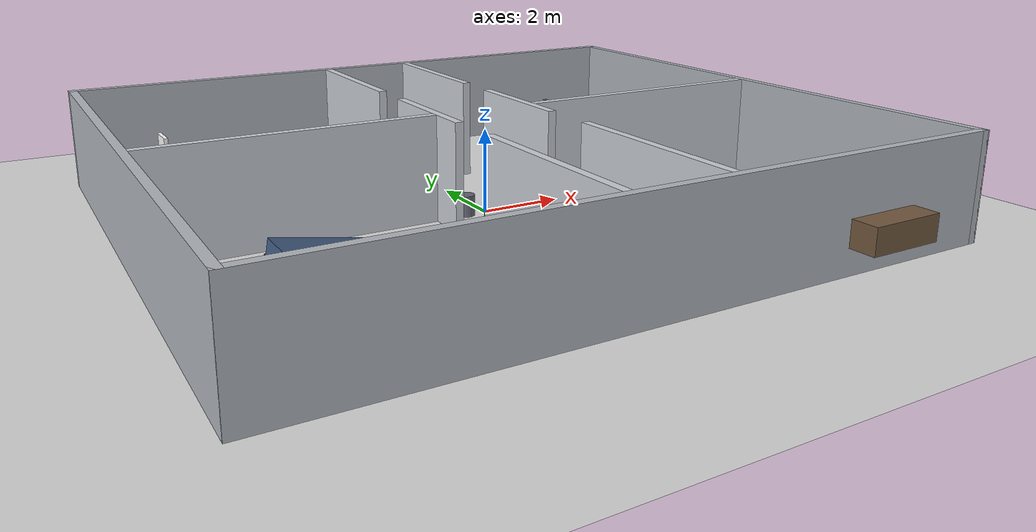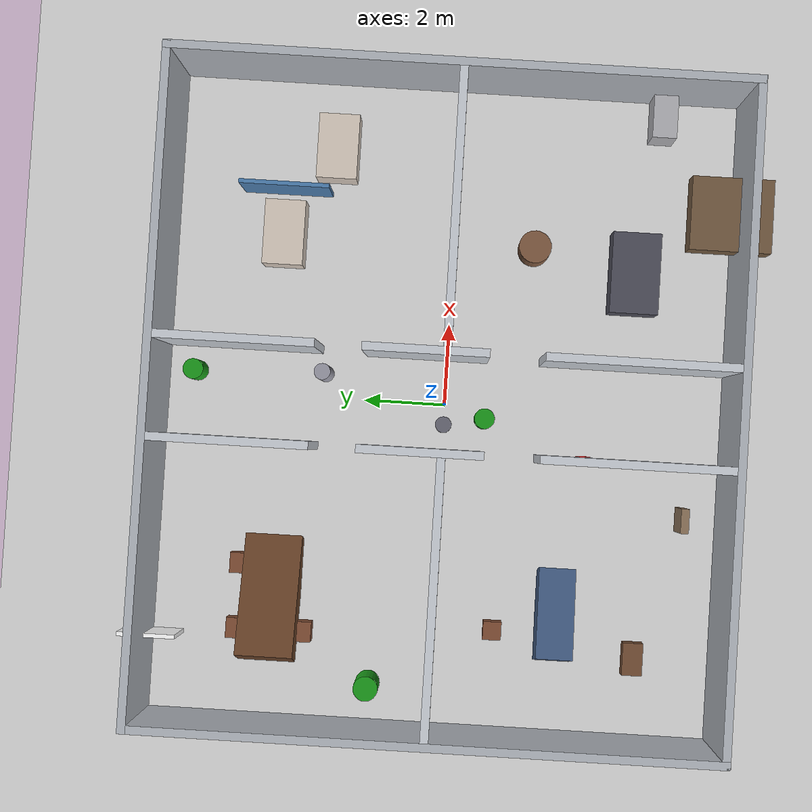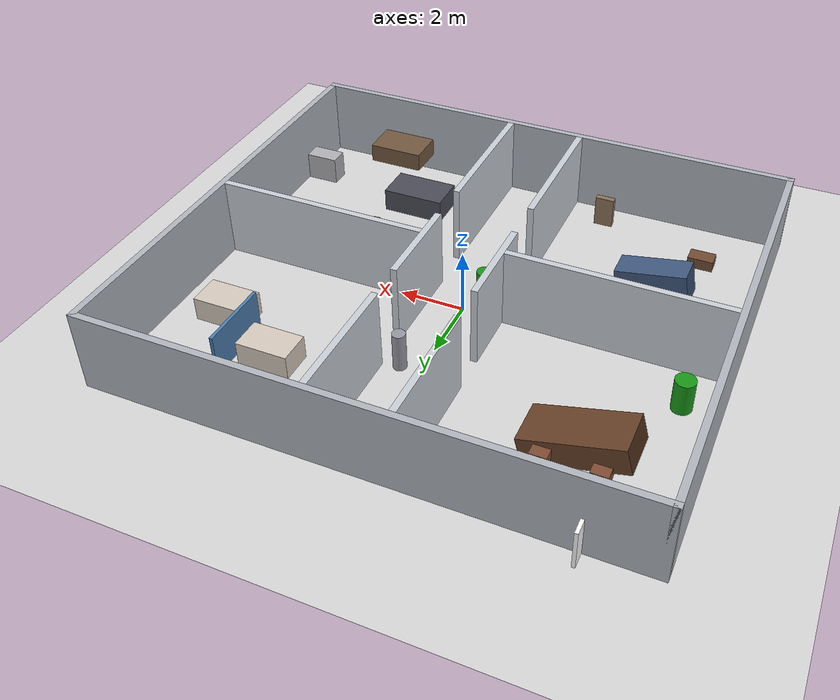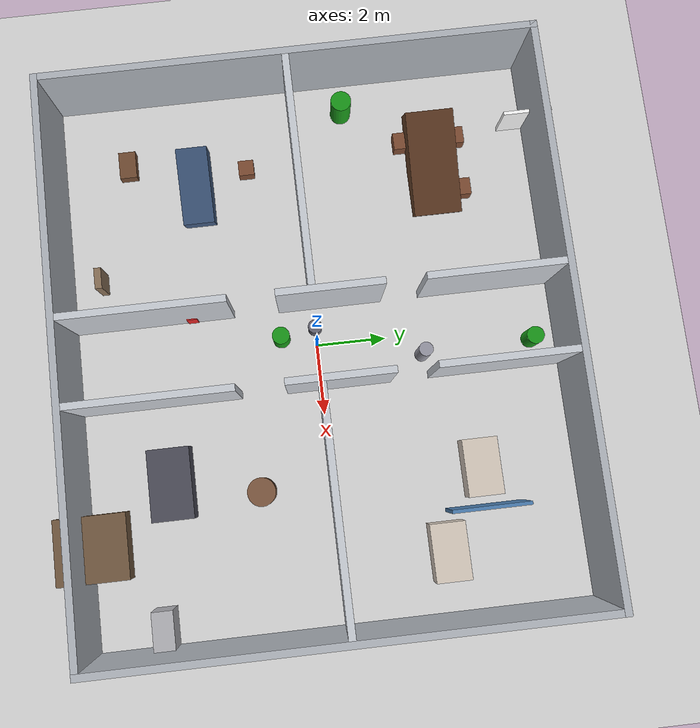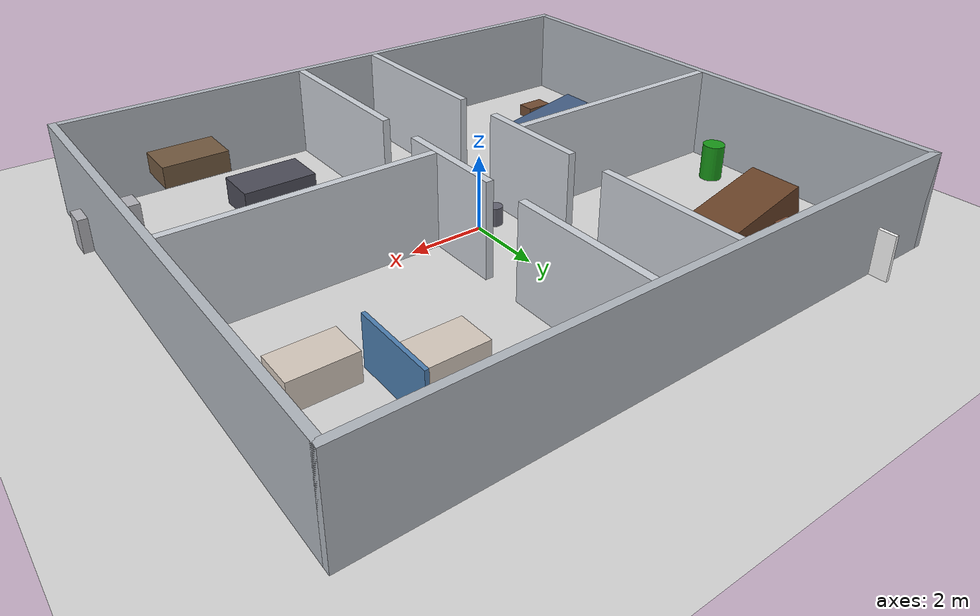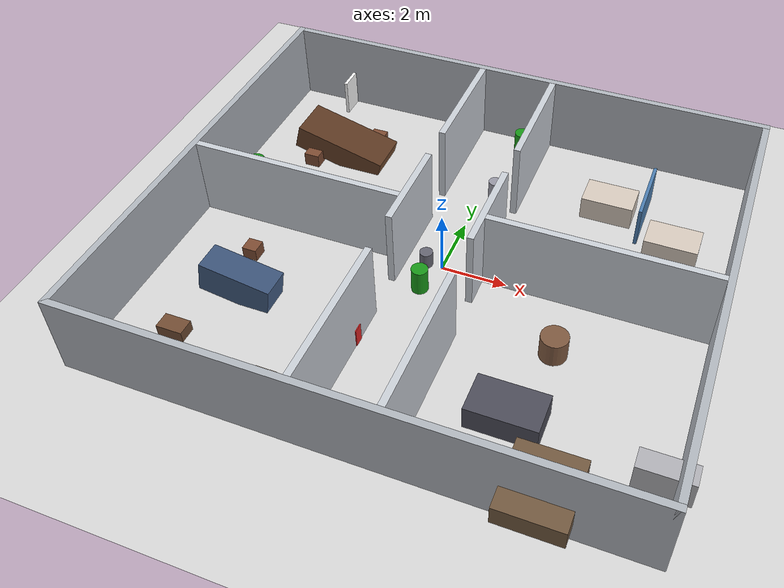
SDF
<?xml version="1.0"?>
<sdf version="1.8">
  <world name="office_world">
    <physics type="ode">
      <real_time_update_rate>1000.0</real_time_update_rate>
      <max_step_size>0.001</max_step_size>
      <real_time_factor>1.0</real_time_factor>
      <ode>
        <solver>
          <type>quick</type>
          <iters>150</iters>
          <precon_iters>0</precon_iters>
          <sor>1.4</sor>
          <use_dynamic_moi_rescaling>1</use_dynamic_moi_rescaling>
        </solver>
        <constraints>
          <cfm>0.00001</cfm>
          <erp>0.2</erp>
          <contact_max_correcting_vel>2000.0</contact_max_correcting_vel>
          <contact_surface_layer>0.01</contact_surface_layer>
        </constraints>
      </ode>
    </physics>

    <!-- Essential Gazebo Plugins for Simulation -->
    <plugin filename="gz-sim-physics-system" name="gz::sim::systems::Physics"/>
    <plugin filename="gz-sim-user-commands-system" name="gz::sim::systems::UserCommands"/>
    <plugin filename="gz-sim-scene-broadcaster-system" name="gz::sim::systems::SceneBroadcaster"/>
    <plugin filename="gz-sim-sensors-system" name="gz::sim::systems::Sensors">
      <render_engine>ogre2</render_engine>
    </plugin>
    <plugin filename="gz-sim-imu-system" name="gz::sim::systems::Imu"/>

    <!-- Ambient Lighting & Sun -->
    <light type="directional" name="sun">
      <cast_shadows>true</cast_shadows>
      <pose>0 0 10 0 0 0</pose>
      <diffuse>0.8 0.8 0.8 1</diffuse>
      <specular>0.2 0.2 0.2 1</specular>
      <direction>-0.5 0.1 -0.9</direction>
    </light>

    <!-- Ground Plane -->
    <model name="ground_plane">
      <static>true</static>
      <link name="link">
        <collision name="collision">
          <geometry>
            <plane>
              <normal>0 0 1</normal>
              <size>50 50</size>
            </plane>
          </geometry>
          <surface>
            <friction>
              <ode>
                <mu>100</mu>
                <mu2>50</mu2>
              </ode>
            </friction>
          </surface>
        </collision>
        <visual name="visual">
          <geometry>
            <plane>
              <normal>0 0 1</normal>
              <size>50 50</size>
            </plane>
          </geometry>
          <material>
            <ambient>0.85 0.85 0.85 1</ambient>
            <diffuse>0.85 0.85 0.85 1</diffuse>
            <specular>0.1 0.1 0.1 1</specular>
          </material>
        </visual>
      </link>
    </model>

    <!-- Office Structure: Outer Walls, Interior Rooms, Corridors, and Furniture -->
    <model name="office_structure">
      <static>true</static>
      <link name="office_link">

        <!-- Perimeter Walls (16m x 14m, 2.5m high, 0.2m thick) -->
        <!-- North Wall -->
        <collision name="north_wall_col">
          <pose>0 7.0 1.25 0 0 0</pose>
          <geometry><box><size>16.2 0.2 2.5</size></box></geometry>
        </collision>
        <visual name="north_wall_vis">
          <pose>0 7.0 1.25 0 0 0</pose>
          <geometry><box><size>16.2 0.2 2.5</size></box></geometry>
          <material><ambient>0.7 0.72 0.75 1</ambient><diffuse>0.7 0.72 0.75 1</diffuse></material>
        </visual>

        <!-- South Wall -->
        <collision name="south_wall_col">
          <pose>0 -7.0 1.25 0 0 0</pose>
          <geometry><box><size>16.2 0.2 2.5</size></box></geometry>
        </collision>
        <visual name="south_wall_vis">
          <pose>0 -7.0 1.25 0 0 0</pose>
          <geometry><box><size>16.2 0.2 2.5</size></box></geometry>
          <material><ambient>0.7 0.72 0.75 1</ambient><diffuse>0.7 0.72 0.75 1</diffuse></material>
        </visual>

        <!-- West Wall -->
        <collision name="west_wall_col">
          <pose>-8.0 0 1.25 0 0 0</pose>
          <geometry><box><size>0.2 14.2 2.5</size></box></geometry>
        </collision>
        <visual name="west_wall_vis">
          <pose>-8.0 0 1.25 0 0 0</pose>
          <geometry><box><size>0.2 14.2 2.5</size></box></geometry>
          <material><ambient>0.7 0.72 0.75 1</ambient><diffuse>0.7 0.72 0.75 1</diffuse></material>
        </visual>

        <!-- East Wall -->
        <collision name="east_wall_col">
          <pose>8.0 0 1.25 0 0 0</pose>
          <geometry><box><size>0.2 14.2 2.5</size></box></geometry>
        </collision>
        <visual name="east_wall_vis">
          <pose>8.0 0 1.25 0 0 0</pose>
          <geometry><box><size>0.2 14.2 2.5</size></box></geometry>
          <material><ambient>0.7 0.72 0.75 1</ambient><diffuse>0.7 0.72 0.75 1</diffuse></material>
        </visual>

        <!-- Interior Hallway Walls (Corridor along Y from -7 to +7, width 2.4m, X in [-1.2, +1.2]) -->
        <!-- West Hallway Wall (Separating left rooms from corridor, with 2 doors) -->
        <!-- West Corridor Wall North Section -->
        <collision name="west_corr_wall_n_col">
          <pose>-1.2 5.0 1.25 0 0 0</pose>
          <geometry><box><size>0.2 3.8 2.5</size></box></geometry>
        </collision>
        <visual name="west_corr_wall_n_vis">
          <pose>-1.2 5.0 1.25 0 0 0</pose>
          <geometry><box><size>0.2 3.8 2.5</size></box></geometry>
          <material><ambient>0.8 0.82 0.85 1</ambient><diffuse>0.8 0.82 0.85 1</diffuse></material>
        </visual>
        <!-- West Doorway North: between y=2.0 and y=3.1 (1.1m opening) -->
        <!-- West Corridor Wall Center Section -->
        <collision name="west_corr_wall_c_col">
          <pose>-1.2 0.5 1.25 0 0 0</pose>
          <geometry><box><size>0.2 3.0 2.5</size></box></geometry>
        </collision>
        <visual name="west_corr_wall_c_vis">
          <pose>-1.2 0.5 1.25 0 0 0</pose>
          <geometry><box><size>0.2 3.0 2.5</size></box></geometry>
          <material><ambient>0.8 0.82 0.85 1</ambient><diffuse>0.8 0.82 0.85 1</diffuse></material>
        </visual>
        <!-- West Doorway South: between y=-1.0 and y=-2.2 (1.2m opening) -->
        <!-- West Corridor Wall South Section -->
        <collision name="west_corr_wall_s_col">
          <pose>-1.2 -4.6 1.25 0 0 0</pose>
          <geometry><box><size>0.2 4.6 2.5</size></box></geometry>
        </collision>
        <visual name="west_corr_wall_s_vis">
          <pose>-1.2 -4.6 1.25 0 0 0</pose>
          <geometry><box><size>0.2 4.6 2.5</size></box></geometry>
          <material><ambient>0.8 0.82 0.85 1</ambient><diffuse>0.8 0.82 0.85 1</diffuse></material>
        </visual>

        <!-- East Hallway Wall (Separating right rooms from corridor, with 2 doors) -->
        <!-- East Corridor Wall North Section -->
        <collision name="east_corr_wall_n_col">
          <pose>1.2 5.0 1.25 0 0 0</pose>
          <geometry><box><size>0.2 3.8 2.5</size></box></geometry>
        </collision>
        <visual name="east_corr_wall_n_vis">
          <pose>1.2 5.0 1.25 0 0 0</pose>
          <geometry><box><size>0.2 3.8 2.5</size></box></geometry>
          <material><ambient>0.8 0.82 0.85 1</ambient><diffuse>0.8 0.82 0.85 1</diffuse></material>
        </visual>
        <!-- East Doorway North: between y=2.0 and y=3.1 (1.1m opening) -->
        <!-- East Corridor Wall Center Section -->
        <collision name="east_corr_wall_c_col">
          <pose>1.2 0.5 1.25 0 0 0</pose>
          <geometry><box><size>0.2 3.0 2.5</size></box></geometry>
        </collision>
        <visual name="east_corr_wall_c_vis">
          <pose>1.2 0.5 1.25 0 0 0</pose>
          <geometry><box><size>0.2 3.0 2.5</size></box></geometry>
          <material><ambient>0.8 0.82 0.85 1</ambient><diffuse>0.8 0.82 0.85 1</diffuse></material>
        </visual>
        <!-- East Doorway South: between y=-1.0 and y=-2.2 (1.2m opening) -->
        <!-- East Corridor Wall South Section -->
        <collision name="east_corr_wall_s_col">
          <pose>1.2 -4.6 1.25 0 0 0</pose>
          <geometry><box><size>0.2 4.6 2.5</size></box></geometry>
        </collision>
        <visual name="east_corr_wall_s_vis">
          <pose>1.2 -4.6 1.25 0 0 0</pose>
          <geometry><box><size>0.2 4.6 2.5</size></box></geometry>
          <material><ambient>0.8 0.82 0.85 1</ambient><diffuse>0.8 0.82 0.85 1</diffuse></material>
        </visual>

        <!-- Room Divider Walls (East-West walls dividing North & South offices on both sides) -->
        <!-- Divider Left (West side: x in [-8, -1.2], at y=0.0) -->
        <collision name="divider_west_col">
          <pose>-4.6 0.0 1.25 0 0 0</pose>
          <geometry><box><size>6.6 0.2 2.5</size></box></geometry>
        </collision>
        <visual name="divider_west_vis">
          <pose>-4.6 0.0 1.25 0 0 0</pose>
          <geometry><box><size>6.6 0.2 2.5</size></box></geometry>
          <material><ambient>0.8 0.82 0.85 1</ambient><diffuse>0.8 0.82 0.85 1</diffuse></material>
        </visual>

        <!-- Divider Right (East side: x in [1.2, 8], at y=0.0) -->
        <collision name="divider_east_col">
          <pose>4.6 0.0 1.25 0 0 0</pose>
          <geometry><box><size>6.6 0.2 2.5</size></box></geometry>
        </collision>
        <visual name="divider_east_vis">
          <pose>4.6 0.0 1.25 0 0 0</pose>
          <geometry><box><size>6.6 0.2 2.5</size></box></geometry>
          <material><ambient>0.8 0.82 0.85 1</ambient><diffuse>0.8 0.82 0.85 1</diffuse></material>
        </visual>

        <!-- FURNITURE & OBSTACLES (density-varied zones) -->

        <!-- Room 1 NW Conference — HIGH density, asymmetric -->

        <!-- Conference Table (shifted, slight 15deg rotation) -->
        <collision name="conf_table_col">
          <pose>-5.0 4.0 0.4 0 0.26 0</pose>
          <geometry><box><size>3.0 1.4 0.8</size></box></geometry>
        </collision>
        <visual name="conf_table_vis">
          <pose>-5.0 4.0 0.4 0 0.26 0</pose>
          <geometry><box><size>3.0 1.4 0.8</size></box></geometry>
          <material><ambient>0.3 0.2 0.1 1</ambient><diffuse>0.4 0.25 0.15 1</diffuse></material>
        </visual>

        <!-- 4 Conference Chairs -->
        <collision name="conf_chair_1_col">
          <pose>-5.8 4.8 0.22 0 0 0</pose>
          <geometry><box><size>0.5 0.5 0.44</size></box></geometry>
        </collision>
        <visual name="conf_chair_1_vis">
          <pose>-5.8 4.8 0.22 0 0 0</pose>
          <geometry><box><size>0.5 0.5 0.44</size></box></geometry>
          <material><ambient>0.4 0.2 0.15 1</ambient><diffuse>0.5 0.3 0.2 1</diffuse></material>
        </visual>

        <collision name="conf_chair_2_col">
          <pose>-4.2 4.8 0.22 0 0 0</pose>
          <geometry><box><size>0.5 0.5 0.44</size></box></geometry>
        </collision>
        <visual name="conf_chair_2_vis">
          <pose>-4.2 4.8 0.22 0 0 0</pose>
          <geometry><box><size>0.5 0.5 0.44</size></box></geometry>
          <material><ambient>0.4 0.2 0.15 1</ambient><diffuse>0.5 0.3 0.2 1</diffuse></material>
        </visual>

        <collision name="conf_chair_3_col">
          <pose>-5.8 3.2 0.22 0 0 0</pose>
          <geometry><box><size>0.5 0.5 0.44</size></box></geometry>
        </collision>
        <visual name="conf_chair_3_vis">
          <pose>-5.8 3.2 0.22 0 0 0</pose>
          <geometry><box><size>0.5 0.5 0.44</size></box></geometry>
          <material><ambient>0.4 0.2 0.15 1</ambient><diffuse>0.5 0.3 0.2 1</diffuse></material>
        </visual>

        <!-- Whiteboard on north wall -->
        <collision name="whiteboard_col">
          <pose>-6.0 6.85 0.6 0 0 0</pose>
          <geometry><box><size>0.1 1.4 1.2</size></box></geometry>
        </collision>
        <visual name="whiteboard_vis">
          <pose>-6.0 6.85 0.6 0 0 0</pose>
          <geometry><box><size>0.1 1.4 1.2</size></box></geometry>
          <material><ambient>0.95 0.95 0.95 1</ambient><diffuse>1.0 1.0 1.0 1</diffuse></material>
        </visual>

        <!-- Potted plant near west doorway -->
        <collision name="conf_plant_col">
          <pose>-7.0 1.5 0.5 0 0 0</pose>
          <geometry><cylinder><radius>0.3</radius><length>1.0</length></cylinder></geometry>
        </collision>
        <visual name="conf_plant_vis">
          <pose>-7.0 1.5 0.5 0 0 0</pose>
          <geometry><cylinder><radius>0.3</radius><length>1.0</length></cylinder></geometry>
          <material><ambient>0.1 0.5 0.1 1</ambient><diffuse>0.1 0.6 0.1 1</diffuse></material>
        </visual>

        <!-- Room 2 SW Reception — MEDIUM density, asymmetric -->

        <!-- Reception Desk (shifted, slight rotation) -->
        <collision name="reception_desk_col">
          <pose>-5.0 -3.0 0.5 0 0.17 0</pose>
          <geometry><box><size>2.2 0.9 1.0</size></box></geometry>
        </collision>
        <visual name="reception_desk_vis">
          <pose>-5.0 -3.0 0.5 0 0.17 0</pose>
          <geometry><box><size>2.2 0.9 1.0</size></box></geometry>
          <material><ambient>0.2 0.3 0.4 1</ambient><diffuse>0.25 0.35 0.5 1</diffuse></material>
        </visual>

        <!-- Coffee table in front of sofa -->
        <collision name="coffee_table_col">
          <pose>-6.0 -5.0 0.175 0 0 0</pose>
          <geometry><box><size>0.8 0.5 0.35</size></box></geometry>
        </collision>
        <visual name="coffee_table_vis">
          <pose>-6.0 -5.0 0.175 0 0 0</pose>
          <geometry><box><size>0.8 0.5 0.35</size></box></geometry>
          <material><ambient>0.35 0.25 0.15 1</ambient><diffuse>0.45 0.3 0.2 1</diffuse></material>
        </visual>

        <!-- Magazine rack near corridor door -->
        <collision name="mag_rack_col">
          <pose>-2.5 -6.0 0.5 0 0 0</pose>
          <geometry><box><size>0.6 0.2 1.0</size></box></geometry>
        </collision>
        <visual name="mag_rack_vis">
          <pose>-2.5 -6.0 0.5 0 0 0</pose>
          <geometry><box><size>0.6 0.2 1.0</size></box></geometry>
          <material><ambient>0.5 0.4 0.3 1</ambient><diffuse>0.55 0.45 0.35 1</diffuse></material>
        </visual>

        <!-- Side chair near door -->
        <collision name="side_chair_col">
          <pose>-5.5 -1.5 0.2 0 0 0</pose>
          <geometry><box><size>0.45 0.45 0.4</size></box></geometry>
        </collision>
        <visual name="side_chair_vis">
          <pose>-5.5 -1.5 0.2 0 0 0</pose>
          <geometry><box><size>0.45 0.45 0.4</size></box></geometry>
          <material><ambient>0.4 0.2 0.15 1</ambient><diffuse>0.5 0.3 0.2 1</diffuse></material>
        </visual>

        <!-- Room 3 NE Cubicles — HIGH density, irregular -->

        <!-- Desk Pod 1 -->
        <collision name="desk_pod_1_col">
          <pose>4.0 4.2 0.38 0 0 0</pose>
          <geometry><box><size>1.6 1.0 0.75</size></box></geometry>
        </collision>
        <visual name="desk_pod_1_vis">
          <pose>4.0 4.2 0.38 0 0 0</pose>
          <geometry><box><size>1.6 1.0 0.75</size></box></geometry>
          <material><ambient>0.85 0.8 0.75 1</ambient><diffuse>0.85 0.8 0.75 1</diffuse></material>
        </visual>

        <!-- Desk Pod 2 (shifted south) -->
        <collision name="desk_pod_2_col">
          <pose>6.2 3.0 0.38 0 0 0</pose>
          <geometry><box><size>1.6 1.0 0.75</size></box></geometry>
        </collision>
        <visual name="desk_pod_2_vis">
          <pose>6.2 3.0 0.38 0 0 0</pose>
          <geometry><box><size>1.6 1.0 0.75</size></box></geometry>
          <material><ambient>0.85 0.8 0.75 1</ambient><diffuse>0.85 0.8 0.75 1</diffuse></material>
        </visual>

        <!-- Partition Screen (main) -->
        <collision name="partition_col">
          <pose>5.1 4.2 0.65 0 0 0</pose>
          <geometry><box><size>0.1 2.2 1.3</size></box></geometry>
        </collision>
        <visual name="partition_vis">
          <pose>5.1 4.2 0.65 0 0 0</pose>
          <geometry><box><size>0.1 2.2 1.3</size></box></geometry>
          <material><ambient>0.3 0.5 0.7 1</ambient><diffuse>0.3 0.5 0.7 1</diffuse></material>
        </visual>

        <!-- Room 4 SE Breakroom — MEDIUM density, varied -->

        <!-- Executive Desk (shifted west) -->
        <collision name="exec_desk_col">
          <pose>3.5 -4.5 0.38 0 0 0</pose>
          <geometry><box><size>2.0 1.2 0.75</size></box></geometry>
        </collision>
        <visual name="exec_desk_vis">
          <pose>3.5 -4.5 0.38 0 0 0</pose>
          <geometry><box><size>2.0 1.2 0.75</size></box></geometry>
          <material><ambient>0.2 0.2 0.25 1</ambient><diffuse>0.3 0.3 0.35 1</diffuse></material>
        </visual>

        <!-- Bookshelf against south wall, rotated 90deg -->
        <collision name="bookshelf_col">
          <pose>5.0 -6.7 0.9 0 1.57 0</pose>
          <geometry><box><size>0.6 2.0 1.8</size></box></geometry>
        </collision>
        <visual name="bookshelf_vis">
          <pose>5.0 -6.7 0.9 0 1.57 0</pose>
          <geometry><box><size>0.6 2.0 1.8</size></box></geometry>
          <material><ambient>0.4 0.3 0.2 1</ambient><diffuse>0.45 0.35 0.25 1</diffuse></material>
        </visual>

        <!-- Break counter against east wall -->
        <collision name="break_counter_col">
          <pose>7.6 -5.0 0.45 0 0 0</pose>
          <geometry><box><size>1.5 0.6 0.9</size></box></geometry>
        </collision>
        <visual name="break_counter_vis">
          <pose>7.6 -5.0 0.45 0 0 0</pose>
          <geometry><box><size>1.5 0.6 0.9</size></box></geometry>
          <material><ambient>0.6 0.6 0.62 1</ambient><diffuse>0.7 0.7 0.72 1</diffuse></material>
        </visual>

        <!-- Round break table -->
        <collision name="round_table_col">
          <pose>4.0 -2.0 0.375 0 0 0</pose>
          <geometry><cylinder><radius>0.4</radius><length>0.75</length></cylinder></geometry>
        </collision>
        <visual name="round_table_vis">
          <pose>4.0 -2.0 0.375 0 0 0</pose>
          <geometry><cylinder><radius>0.4</radius><length>0.75</length></cylinder></geometry>
          <material><ambient>0.45 0.3 0.2 1</ambient><diffuse>0.5 0.35 0.25 1</diffuse></material>
        </visual>

        <!-- Corridor — LIGHT clutter, breaks linearity   -->

        <!-- Plant near north end -->
        <collision name="hall_plant_1_col">
          <pose>0.5 6.2 0.4 0 0 0</pose>
          <geometry><cylinder><radius>0.25</radius><length>0.8</length></cylinder></geometry>
        </collision>
        <visual name="hall_plant_1_vis">
          <pose>0.5 6.2 0.4 0 0 0</pose>
          <geometry><cylinder><radius>0.25</radius><length>0.8</length></cylinder></geometry>
          <material><ambient>0.1 0.5 0.1 1</ambient><diffuse>0.1 0.6 0.1 1</diffuse></material>
        </visual>

        <!-- Plant mid-corridor -->
        <collision name="hall_plant_2_col">
          <pose>-0.3 -1.0 0.4 0 0 0</pose>
          <geometry><cylinder><radius>0.25</radius><length>0.8</length></cylinder></geometry>
        </collision>
        <visual name="hall_plant_2_vis">
          <pose>-0.3 -1.0 0.4 0 0 0</pose>
          <geometry><cylinder><radius>0.25</radius><length>0.8</length></cylinder></geometry>
          <material><ambient>0.1 0.5 0.1 1</ambient><diffuse>0.1 0.6 0.1 1</diffuse></material>
        </visual>

        <!-- Fire extinguisher on west wall -->
        <collision name="fire_ext_col">
          <pose>-1.15 -3.5 0.3 0 0 0</pose>
          <geometry><box><size>0.15 0.3 0.6</size></box></geometry>
        </collision>
        <visual name="fire_ext_vis">
          <pose>-1.15 -3.5 0.3 0 0 0</pose>
          <geometry><box><size>0.15 0.3 0.6</size></box></geometry>
          <material><ambient>0.8 0.1 0.1 1</ambient><diffuse>0.9 0.15 0.15 1</diffuse></material>
        </visual>

        <!-- Standing fan -->
        <collision name="standing_fan_col">
          <pose>0.6 3.0 0.6 0 0 0</pose>
          <geometry><cylinder><radius>0.2</radius><length>1.2</length></cylinder></geometry>
        </collision>
        <visual name="standing_fan_vis">
          <pose>0.6 3.0 0.6 0 0 0</pose>
          <geometry><cylinder><radius>0.2</radius><length>1.2</length></cylinder></geometry>
          <material><ambient>0.5 0.5 0.55 1</ambient><diffuse>0.6 0.6 0.65 1</diffuse></material>
        </visual>

        <!-- Trash bin near center -->
        <collision name="trash_bin_col">
          <pose>-0.5 0.0 0.25 0 0 0</pose>
          <geometry><cylinder><radius>0.2</radius><length>0.5</length></cylinder></geometry>
        </collision>
        <visual name="trash_bin_vis">
          <pose>-0.5 0.0 0.25 0 0 0</pose>
          <geometry><cylinder><radius>0.2</radius><length>0.5</length></cylinder></geometry>
          <material><ambient>0.3 0.3 0.35 1</ambient><diffuse>0.4 0.4 0.45 1</diffuse></material>
        </visual>

      </link>
    </model>
  </world>
</sdf>
